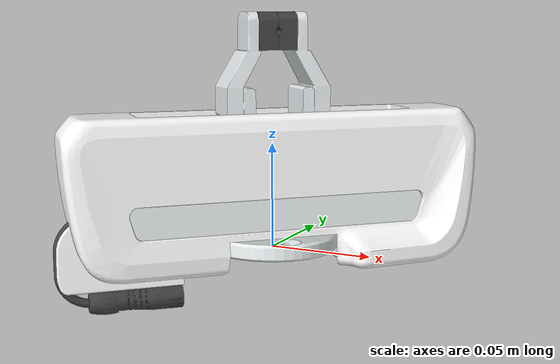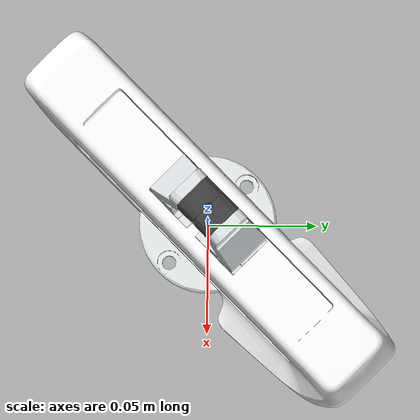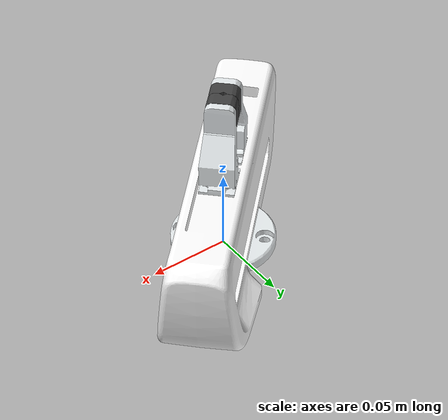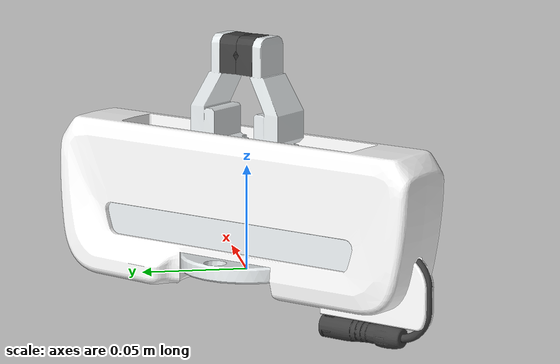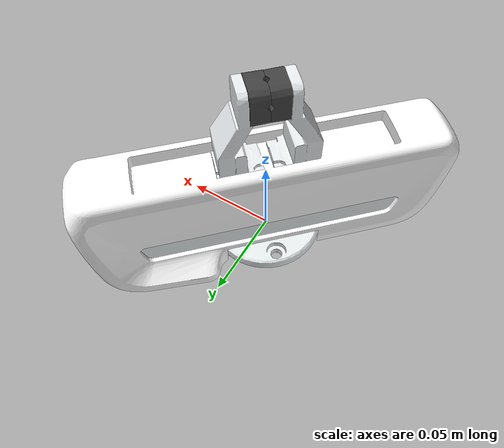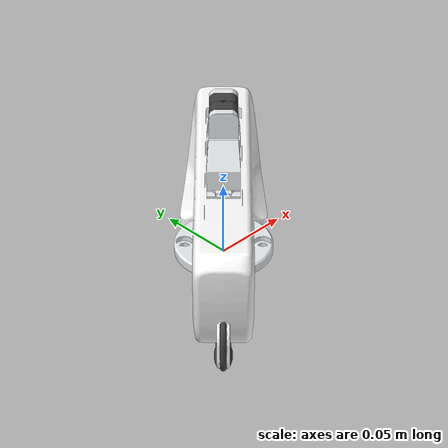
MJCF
<?xml version="1.0" encoding="utf-8"?>
<mujoco model="fr3v2_1_hand">
  <compiler angle="radian" meshdir="assets" autolimits="true" inertiafromgeom="false" fusestatic="false"/>
  <option timestep="0.001" integrator="implicitfast" solver="Newton" iterations="50" ls_iterations="10" gravity="0 0 -9.81"/>
  <default>
    <geom density="0"/>
    <default class="visual">
      <geom contype="0" conaffinity="0" group="2" density="0"/>
    </default>
    <default class="collision">
      <geom group="3" contype="1" conaffinity="1" condim="3" friction="1.0 0.005 0.0001" density="0"/>
    </default>
    <default class="wheel">
      <geom group="3" contype="1" conaffinity="1" condim="3" friction="1.2 0.005 0.0001" density="0"/>
    </default>
    <default class="finger_pad">
      <geom group="3" contype="1" conaffinity="1" condim="4" friction="1.0 0.005 0.0001" solref="0.02 1" solimp="0.9 0.95 0.001" density="0"/>
    </default>
  </default>
  <asset>
    <material name="dae_Part__Feature_007_325fa00c74" rgba="0.2509804 0.2509804 0.2509804 1"/>
    <material name="dae_Part__Feature001_006_bdaff437a0" rgba="0.9019608 0.9215686 0.9294118 1"/>
    <material name="dae_Part__Feature002_005_005_bdaff437a0" rgba="0.9019608 0.9215686 0.9294118 1"/>
    <material name="dae_Part__Feature005_001_005_1bf779d349" rgba="1 1 1 1"/>
    <material name="dae_Part__Feature_009_005_325fa00c74" rgba="0.2509804 0.2509804 0.2509804 1"/>
    <material name="dae_Part__Feature001_008_005_325fa00c74" rgba="0.2509804 0.2509804 0.2509804 1"/>
    <material name="dae_Part__Feature005_001_005_001_bdaff437a0" rgba="0.9019608 0.9215686 0.9294118 1"/>
    <mesh name="hand_visual_0" file="visual/hand_0.obj" inertia="shell"/>
    <mesh name="hand_visual_1" file="visual/hand_1.obj" inertia="shell"/>
    <mesh name="hand_visual_2" file="visual/hand_2.obj" inertia="shell"/>
    <mesh name="hand_visual_3" file="visual/hand_3.obj" inertia="shell"/>
    <mesh name="hand_visual_4" file="visual/hand_4.obj" inertia="shell"/>
    <mesh name="hand_collision" file="collision/hand.stl"/>
    <mesh name="finger_visual_0" file="visual/finger_0.obj" inertia="shell"/>
    <mesh name="finger_visual_1" file="visual/finger_1.obj" inertia="shell"/>
  </asset>
  <worldbody>
    <body name="fr3v2_1_hand" pos="0 0 0" quat="0.9238795325 0 0 -0.3826834324">
      <inertial pos="-3.76e-05 0.0119128 0.020726" mass="0.6544" fullinertia="0.00186 0.0003 0.00174 0 0 -2e-05"/>
      <geom class="visual" pos="0 0 0" quat="1 0 0 0" type="mesh" mesh="hand_visual_0" material="dae_Part__Feature002_005_005_bdaff437a0"/>
      <geom class="visual" pos="0 0 0" quat="1 0 0 0" type="mesh" mesh="hand_visual_1" material="dae_Part__Feature005_001_005_1bf779d349"/>
      <geom class="visual" pos="0 0 0" quat="1 0 0 0" type="mesh" mesh="hand_visual_2" material="dae_Part__Feature_009_005_325fa00c74"/>
      <geom class="visual" pos="0 0 0" quat="1 0 0 0" type="mesh" mesh="hand_visual_3" material="dae_Part__Feature001_008_005_325fa00c74"/>
      <geom class="visual" pos="0 0 0" quat="1 0 0 0" type="mesh" mesh="hand_visual_4" material="dae_Part__Feature005_001_005_001_bdaff437a0"/>
      <geom class="collision" type="mesh" mesh="hand_collision" pos="0 0 0" quat="1 0 0 0"/>
      <body name="fr3v2_1_hand_sc" pos="0 0 0" quat="1 0 0 0">
        <geom class="collision" type="cylinder" size="0.07 0.05" pos="0 0 0.04" quat="0.7071067812 0.7071067812 0 0"/>
        <geom class="collision" type="sphere" size="0.07" pos="0 0.05 0.04" quat="1 0 0 0"/>
        <geom class="collision" type="sphere" size="0.07" pos="0 -0.05 0.04" quat="1 0 0 0"/>
        <geom class="collision" type="cylinder" size="0.05 0.05" pos="0 0 0.1" quat="0.7071067812 0.7071067812 0 0"/>
        <geom class="collision" type="sphere" size="0.05" pos="0 0.05 0.1" quat="1 0 0 0"/>
        <geom class="collision" type="sphere" size="0.05" pos="0 -0.05 0.1" quat="1 0 0 0"/>
      </body>
      <body name="fr3v2_1_hand_tcp" pos="0 0 0.1034" quat="1 0 0 0">
        <site name="fr3v2_1_hand_tcp" size="0.002"/>
      </body>
      <body name="fr3v2_1_leftfinger" pos="0 0 0.0584" quat="1 0 0 0">
        <joint name="fr3v2_1_finger_joint1" type="slide" axis="0 1 0" limited="true" range="0 0.04" damping="0.3"/>
        <inertial pos="0 0.015285 0.0219675" mass="0.0291" fullinertia="8.49e-06 8.53e-06 1.77e-06 0 0 -1.06e-06"/>
        <geom class="visual" pos="0 0 0" quat="1 0 0 0" type="mesh" mesh="finger_visual_0" material="dae_Part__Feature_007_325fa00c74"/>
        <geom class="visual" pos="0 0 0" quat="1 0 0 0" type="mesh" mesh="finger_visual_1" material="dae_Part__Feature001_006_bdaff437a0"/>
        <geom class="finger_pad" type="box" size="0.011 0.0075 0.01" pos="0 0.0185 0.011" quat="1 0 0 0"/>
        <geom class="finger_pad" type="box" size="0.011 0.0044 0.0019" pos="0 0.0068 0.0022" quat="1 0 0 0"/>
        <geom class="finger_pad" type="box" size="0.00875 0.0035 0.01175" pos="0 0.0159 0.02835" quat="0.9659258263 0.2588190451 0 0"/>
        <geom class="finger_pad" type="box" size="0.00875 0.0076 0.00925" pos="0 0.00758 0.04525" quat="1 0 0 0"/>
      </body>
      <body name="fr3v2_1_rightfinger" pos="0 0 0.0584" quat="6.123233996e-17 0 0 1">
        <joint name="fr3v2_1_finger_joint2" type="slide" axis="0 1 0" limited="true" range="0 0.04" damping="0.3"/>
        <inertial pos="0 0.015285 0.0219675" mass="0.0291" fullinertia="8.49e-06 8.53e-06 1.77e-06 0 0 -1.06e-06"/>
        <geom class="visual" pos="0 0 0" quat="1 0 0 0" type="mesh" mesh="finger_visual_0" material="dae_Part__Feature_007_325fa00c74"/>
        <geom class="visual" pos="0 0 0" quat="1 0 0 0" type="mesh" mesh="finger_visual_1" material="dae_Part__Feature001_006_bdaff437a0"/>
        <geom class="finger_pad" type="box" size="0.011 0.0075 0.01" pos="0 0.0185 0.011" quat="1 0 0 0"/>
        <geom class="finger_pad" type="box" size="0.011 0.0044 0.0019" pos="0 0.0068 0.0022" quat="1 0 0 0"/>
        <geom class="finger_pad" type="box" size="0.00875 0.0035 0.01175" pos="0 0.0159 0.02835" quat="5.914589857e-17 -1.584809576e-17 -0.2588190451 0.9659258263"/>
        <geom class="finger_pad" type="box" size="0.00875 0.0076 0.00925" pos="0 0.00758 0.04525" quat="1 0 0 0"/>
      </body>
    </body>
  </worldbody>
</mujoco>
